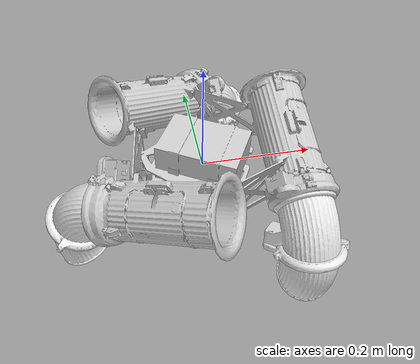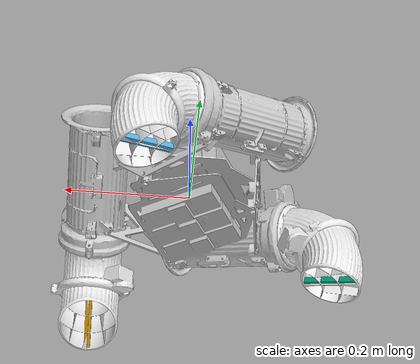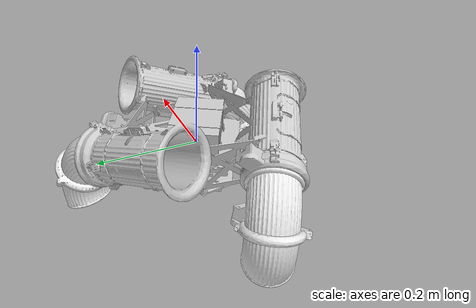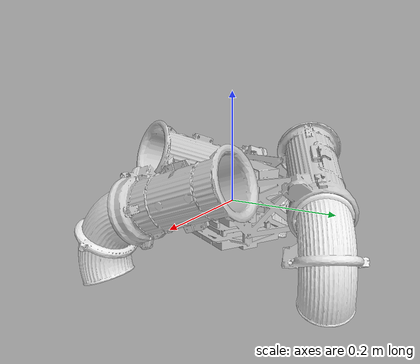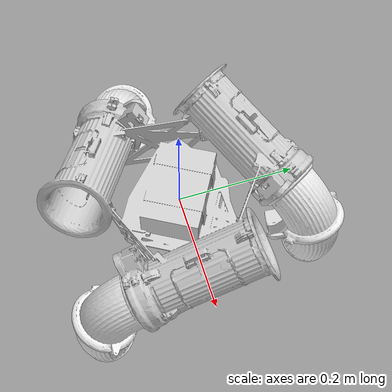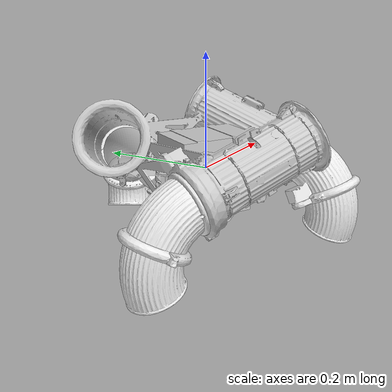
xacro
<?xml version="1.0"?>
<robot xmlns:xacro="http://www.ros.org/wiki/xacro" name="drone">

    <!-- Macros definition -->
    <xacro:macro name="nozzle" params="number position">
        <link name="nozzle_${number}_${position}">
            <visual>
                <geometry>
                    <mesh filename="package://avero_sim/meshes/Nozzle_${position}_V3.stl" scale="1 1 1"/>
                </geometry>
            </visual>
            <collision>
                <origin xyz="0.0 0.0 0.0" rpy="0.0 0.0 1.0472"/>
                <geometry>
                    <cylinder radius="0.05" length="0.05"/>
                </geometry>
            </collision>
            <xacro:if value="${position == 'top'}">
                <inertial>
                    <mass value="0.079"/>
                    <inertia ixx="0.001" ixy="0" ixz="0" iyy="0.001" iyz="0.0" izz="0.001"/>
                </inertial>
            </xacro:if>
            <xacro:if value="${position == 'base'}">
                <inertial>
                    <mass value="0.19"/>
                    <inertia ixx="0.001" ixy="0" ixz="0" iyy="0.001" iyz="0.0" izz="0.001"/>
                </inertial>
            </xacro:if>
        </link>
    </xacro:macro>

    <xacro:macro name="frame_to_nozzle_joint" params="parent child x y z roll pitch yaw">
        <joint name="${parent}_to_${child}" type="revolute">
            <origin xyz="${x} ${y} ${z}" rpy="${roll} ${pitch} ${yaw}"/>
            <parent link="frame"/>
            <child link="${child}"/>
            <axis xyz="0 1 0"/>
            <limit lower="-62.8" upper="62.8" velocity="10.0" effort="100.0"/>
            <dynamics damping="0.1" friction="0.0"/>
        </joint>
    </xacro:macro>

    <xacro:macro name="nozzle_to_nozzle_joint" params="parent child">
        <joint name="${parent}_to_${child}" type="revolute">
            <origin xyz="0.028 0.068 0" rpy="0 0 -0.7854"/>
            <parent link="${parent}"/>
            <child link="${child}"/>
            <axis xyz="0 1 0"/>
            <limit lower="-62.8" upper="62.8" velocity="10.0" effort="100.0"/>
            <dynamics damping="0.1" friction="0.0"/>
        </joint>
    </xacro:macro>

    <xacro:macro name="rotor" params="number parent">
        <link name="rotor_${number}">
            <visual>
                <geometry>
                    <box size="0.09 0.01 0.01" />
                </geometry>
            </visual>
            <collision>
                <geometry>
                    <box size="0.01 0.005 0.005" />
                </geometry>
            </collision>
            <inertial>
                <mass value="0.001"/>
                <inertia ixx="0.001" ixy="0.0" ixz="0.0" iyy="0.001" iyz="0.0" izz="0.001"/>
            </inertial>
        </link>

        <joint name="rotor_${number}_joint" type="continuous">
            <origin xyz="0.028 0.068 0" rpy="1.5708 0 -0.7854"/>
            <parent link="${parent}"/>
            <child link="rotor_${number}"/>
            <axis xyz="0 0 1"/>
        </joint>
    </xacro:macro>

    <!-- frame and base_link Definition -->
    <link name="frame">
        <visual>
            <geometry>
                <mesh filename="package://avero_sim/meshes/Frame_V3.stl" scale="0.001 0.001 0.001"/>
            </geometry>
        </visual>
        <collision>
            <geometry>
                <cylinder radius="0.1" length="0.1"/>
            </geometry>
        </collision>
         <inertial>
            <mass value="4.16"/>
            <inertia ixx="0.034416" ixy="0" ixz="-0.000051" iyy="0.035273" iyz="0.0" izz="0.057548"/>
        </inertial>
    </link>

    <link name="base_link">
    </link>

    <joint name="base_joint" type="fixed">
        <origin xyz="0.0 0.0 0.0" rpy="0.0 0.0 0.0"/>
        <parent link="base_link"/>
        <child link="frame"/>
    </joint>

    <!-- 6 nozzles -->
    <xacro:nozzle number="1" position="base"/>
    <xacro:nozzle number="1" position="top"/>
    <xacro:nozzle number="2" position="base"/>
    <xacro:nozzle number="2" position="top"/>
    <xacro:nozzle number="3" position="base"/>
    <xacro:nozzle number="3" position="top"/>

    <!-- 6 joints -->
    <xacro:frame_to_nozzle_joint parent="frame" child="nozzle_1_base" x=" 0.1500" y="-0.117080" z="0" roll="1.5708" pitch="1.9199" yaw="-1.5708"/>
    <xacro:frame_to_nozzle_joint parent="frame" child="nozzle_2_base" x=" 0.0264" y=" 0.188445" z="0" roll="1.5708" pitch="1.9199" yaw="0.5236"/>
    <xacro:frame_to_nozzle_joint parent="frame" child="nozzle_3_base" x="-0.1764" y="-0.071362" z="0" roll="1.5708" pitch="1.9199" yaw="2.6180"/>
    <xacro:nozzle_to_nozzle_joint parent="nozzle_1_base" child="nozzle_1_top"/>
    <xacro:nozzle_to_nozzle_joint parent="nozzle_2_base" child="nozzle_2_top"/>
    <xacro:nozzle_to_nozzle_joint parent="nozzle_3_base" child="nozzle_3_top"/>

    <!-- Color -->
    <gazebo reference="frame">
      <material>Gazebo/LightGrey</material>
    </gazebo>
    <gazebo reference="nozzle_1_base">
      <material>Gazebo/White</material>
    </gazebo>
    <gazebo reference="nozzle_2_base">
      <material>Gazebo/White</material>
    </gazebo>
    <gazebo reference="nozzle_3_base">
      <material>Gazebo/White</material>
    </gazebo>
    <gazebo reference="nozzle_1_top">
      <material>Gazebo/White</material>
    </gazebo>
    <gazebo reference="nozzle_2_top">
      <material>Gazebo/White</material>
    </gazebo>
    <gazebo reference="nozzle_3_top">
      <material>Gazebo/White</material>
    </gazebo>

    <!-- 3 rotors -->
    <xacro:rotor number="1" parent="nozzle_1_top"/>
    <xacro:rotor number="2" parent="nozzle_2_top"/>
    <xacro:rotor number="3" parent="nozzle_3_top"/>

    <!-- parameters -->
    <!-- We need to use different gains for the "inner" and "outer" nozzle -->

    <!-- Servo Parameters -->
    <xacro:property name="p_gain_1st" value="50" />
    <xacro:property name="i_gain_1st" value="0.02" />
    <xacro:property name="d_gain_1st" value="3.5" />

    <xacro:property name="p_gain_2nd" value="50" />
    <xacro:property name="i_gain_2nd" value="0.02" />
    <xacro:property name="d_gain_2nd" value="3.5" />

    <xacro:property name="c_min" value="-1.0"/>
    <xacro:property name="c_max" value="1.0"/>

    <xacro:property name="i_min" value="-1.0"/>
    <xacro:property name="i_max" value="1.0"/>

    <xacro:property name="tilt_control_mode" value="position" />
    <xacro:property name="servo_zero_offset" value="0.0" />

    <!-- Rotor Parameters -->
    <xacro:property name="thrust_constant" value="${5.749E-05}" />
    <xacro:property name="moment_constant" value="0.016" />
    <xacro:property name="time_constant_up" value="0.35" />
    <xacro:property name="time_constant_down" value="0.35" />
    <xacro:property name="rotor_drag_coefficient" value="${8.06428e-05}" />
    <xacro:property name="rolling_moment_coefficient" value="0.000001" />

    <xacro:property name="rotor_velocity_slowdown_sim" value="10" />

    <gazebo>
        <plugin name="multimotor_plugin" filename="librotors_gazebo_multimotor_plugin.so">
        <rotors>
            <rotor>
                <jointName>rotor_1_joint</jointName>
                <linkName>rotor_1</linkName>
                <spinDirection>ccw</spinDirection>
                <timeConstantUp>${time_constant_up}</timeConstantUp>
                <timeConstantDown>${time_constant_down}</timeConstantDown>
                <thrustConstant>${thrust_constant}</thrustConstant>
                <momentConstant>${moment_constant}</momentConstant>
                <rotorDragCoefficient>${rotor_drag_coefficient}</rotorDragCoefficient>
                <rollingMomentCoefficient>${rolling_moment_coefficient}</rollingMomentCoefficient>
                <rotorVelocitySlowdownSim>${rotor_velocity_slowdown_sim}</rotorVelocitySlowdownSim>
            </rotor>
            <rotor>
                <jointName>rotor_2_joint</jointName>
                <linkName>rotor_2</linkName>
                <spinDirection>ccw</spinDirection>
                <timeConstantUp>${time_constant_up}</timeConstantUp>
                <timeConstantDown>${time_constant_down}</timeConstantDown>
                <thrustConstant>${thrust_constant}</thrustConstant>
                <momentConstant>${moment_constant}</momentConstant>
                <rotorDragCoefficient>${rotor_drag_coefficient}</rotorDragCoefficient>
                <rollingMomentCoefficient>${rolling_moment_coefficient}</rollingMomentCoefficient>
                <rotorVelocitySlowdownSim>${rotor_velocity_slowdown_sim}</rotorVelocitySlowdownSim>
            </rotor>
            <rotor>
                <jointName>rotor_3_joint</jointName>
                <linkName>rotor_3</linkName>
                <spinDirection>ccw</spinDirection>
                <timeConstantUp>${time_constant_up}</timeConstantUp>
                <timeConstantDown>${time_constant_down}</timeConstantDown>
                <thrustConstant>${thrust_constant}</thrustConstant>
                <momentConstant>${moment_constant}</momentConstant>
                <rotorDragCoefficient>${rotor_drag_coefficient}</rotorDragCoefficient>
                <rollingMomentCoefficient>${rolling_moment_coefficient}</rollingMomentCoefficient>
                <rotorVelocitySlowdownSim>${rotor_velocity_slowdown_sim}</rotorVelocitySlowdownSim>
            </rotor>
        </rotors>
            <servos>
                <servo>
                <jointName>frame_to_nozzle_1_base</jointName>
                <spinDirection>ccw</spinDirection>
                <controlMode>${tilt_control_mode}</controlMode>
                <maxRotVelocity>${10}</maxRotVelocity>
                <minRotPosition>${-pi*6}</minRotPosition>
                <maxRotPosition>${pi*6}</maxRotPosition>
                <zeroOffset>${servo_zero_offset}</zeroOffset>
                <joint_control_pid>
                    <p>${p_gain_1st}</p>
                    <i>${i_gain_1st}</i>
                    <d>${d_gain_1st}</d>
                    <iMax>${i_max}</iMax>
                    <iMin>${i_min}</iMin>
                    <cmdMax>${c_max}</cmdMax>
                    <cmdMin>${c_min}</cmdMin>
                </joint_control_pid>
                </servo>
                <servo>
                <jointName>nozzle_1_base_to_nozzle_1_top</jointName>
                <spinDirection>ccw</spinDirection>
                <controlMode>${tilt_control_mode}</controlMode>
                <maxRotVelocity>${10}</maxRotVelocity>
                <minRotPosition>${-pi*6}</minRotPosition>
                <maxRotPosition>${pi*6}</maxRotPosition>
                <zeroOffset>${servo_zero_offset}</zeroOffset>
                <joint_control_pid>
                    <p>${p_gain_2nd}</p>
                    <i>${i_gain_2nd}</i>
                    <d>${d_gain_2nd}</d>
                    <iMax>${i_max}</iMax>
                    <iMin>${i_min}</iMin>
                    <cmdMax>${c_max}</cmdMax>
                    <cmdMin>${c_min}</cmdMin>
                </joint_control_pid>
                </servo>
                <servo>
                <jointName>frame_to_nozzle_2_base</jointName>
                <spinDirection>ccw</spinDirection>
                <controlMode>${tilt_control_mode}</controlMode>
                <maxRotVelocity>${10}</maxRotVelocity>
                <minRotPosition>${-pi*6}</minRotPosition>
                <maxRotPosition>${pi*6}</maxRotPosition>
                <zeroOffset>${servo_zero_offset}</zeroOffset>
                <joint_control_pid>
                    <p>${p_gain_1st}</p>
                    <i>${i_gain_1st}</i>
                    <d>${d_gain_1st}</d>
                    <iMax>${i_max}</iMax>
                    <iMin>${i_min}</iMin>
                    <cmdMax>${c_max}</cmdMax>
                    <cmdMin>${c_min}</cmdMin>
                </joint_control_pid>
                </servo>
                <servo>
                <jointName>nozzle_2_base_to_nozzle_2_top</jointName>
                <spinDirection>ccw</spinDirection>
                <controlMode>${tilt_control_mode}</controlMode>
                <maxRotVelocity>${10}</maxRotVelocity>
                <minRotPosition>${-pi*6}</minRotPosition>
                <maxRotPosition>${pi*6}</maxRotPosition>
                <zeroOffset>${servo_zero_offset}</zeroOffset>
                <joint_control_pid>
                    <p>${p_gain_2nd}</p>
                    <i>${i_gain_2nd}</i>
                    <d>${d_gain_2nd}</d>
                    <iMax>${i_max}</iMax>
                    <iMin>${i_min}</iMin>
                    <cmdMax>${c_max}</cmdMax>
                    <cmdMin>${c_min}</cmdMin>
                </joint_control_pid>
                </servo>
                <servo>
                <jointName>frame_to_nozzle_3_base</jointName>
                <spinDirection>ccw</spinDirection>
                <controlMode>${tilt_control_mode}</controlMode>
                <maxRotVelocity>${10}</maxRotVelocity>
                <minRotPosition>${-pi*6}</minRotPosition>
                <maxRotPosition>${pi*6}</maxRotPosition>
                <zeroOffset>${servo_zero_offset}</zeroOffset>
                <joint_control_pid>
                    <p>${p_gain_1st}</p>
                    <i>${i_gain_1st}</i>
                    <d>${d_gain_1st}</d>
                    <iMax>${i_max}</iMax>
                    <iMin>${i_min}</iMin>
                    <cmdMax>${c_max}</cmdMax>
                    <cmdMin>${c_min}</cmdMin>
                </joint_control_pid>
                </servo>
                <servo>
                <jointName>nozzle_3_base_to_nozzle_3_top</jointName>
                <spinDirection>ccw</spinDirection>
                <controlMode>${tilt_control_mode}</controlMode>
                <maxRotVelocity>${10}</maxRotVelocity>
                <minRotPosition>${-pi*6}</minRotPosition>
                <maxRotPosition>${pi*6}</maxRotPosition>
                <zeroOffset>${servo_zero_offset}</zeroOffset>
                <joint_control_pid>
                    <p>${p_gain_2nd}</p>
                    <i>${i_gain_2nd}</i>
                    <d>${d_gain_2nd}</d>
                    <iMax>${i_max}</iMax>
                    <iMin>${i_min}</iMin>
                    <cmdMax>${c_max}</cmdMax>
                    <cmdMin>${c_min}</cmdMin>
                </joint_control_pid>
                </servo>
            </servos>
        </plugin>

    </gazebo>

    <gazebo>
        <plugin name="baselink_transfo" filename="libgazebo_ros_p3d.so">
          <frameName>map</frameName>
          <topicName>pose_base_link</topicName>
          <bodyName>base_link</bodyName>
          <updateRate>100.0</updateRate>
        </plugin>
      </gazebo>

</robot>
